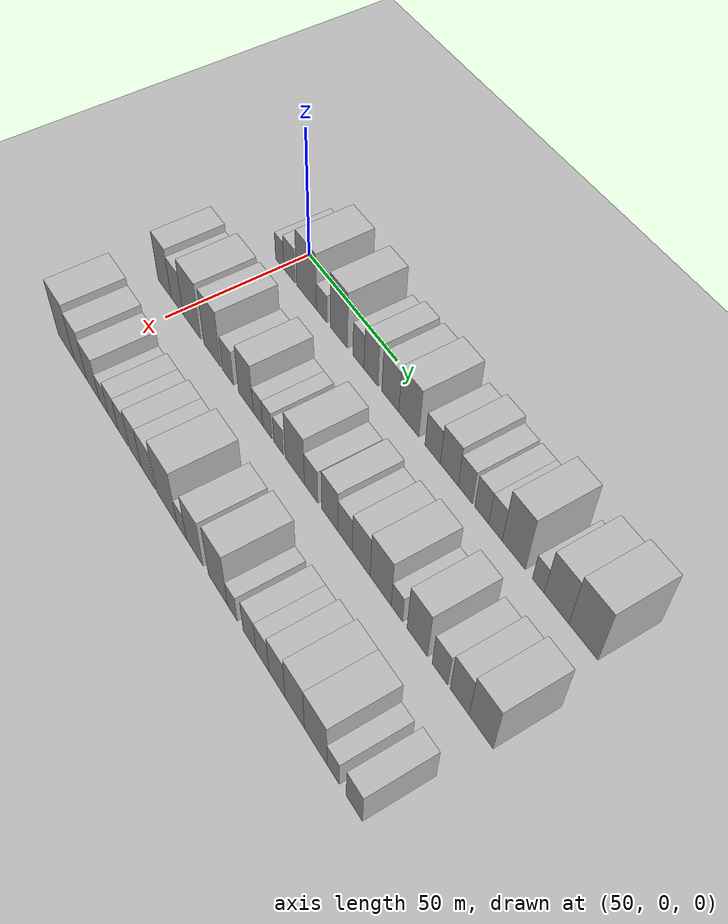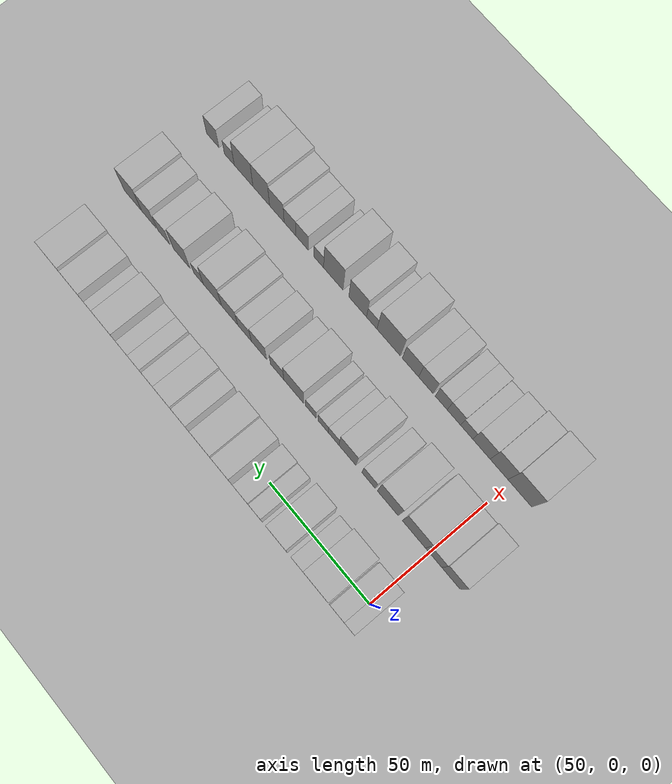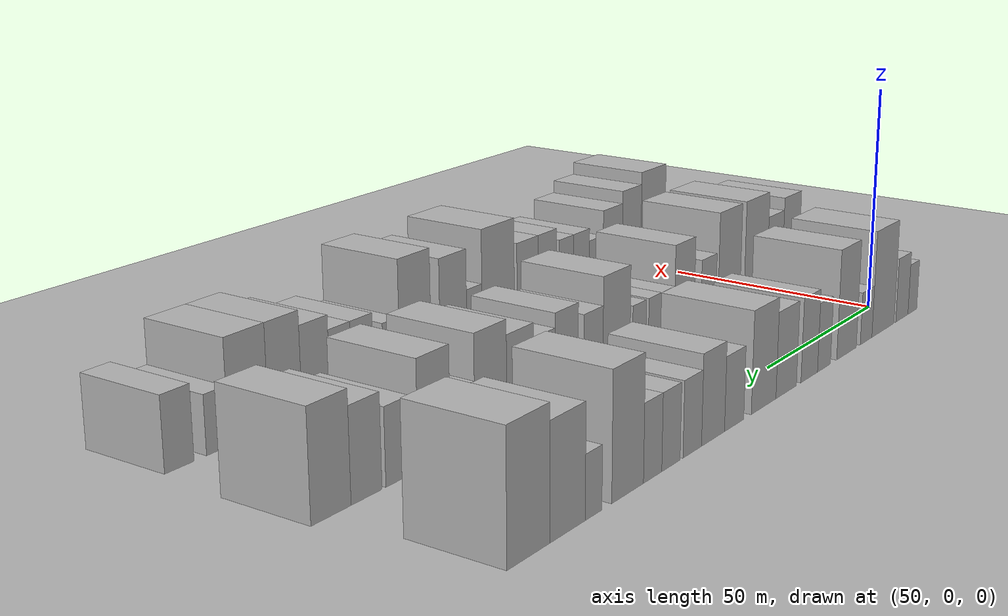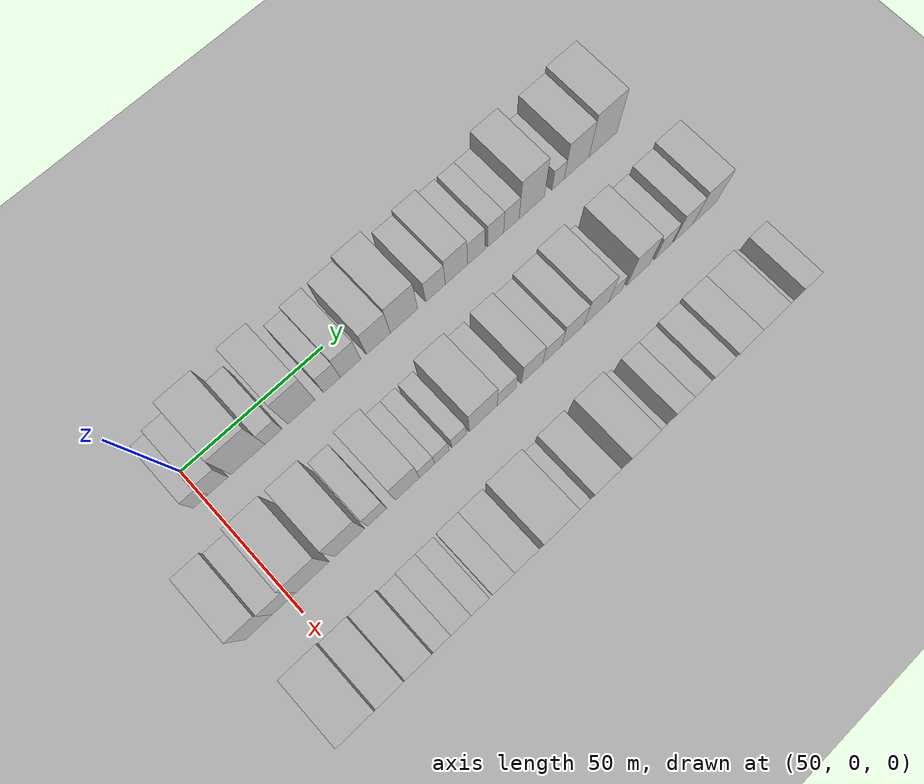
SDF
<sdf version="1.6">
 <world name="default">
  <include><name>ground_plane_1</name><uri>model://HANNAS_ground_plane</uri></include>
  <include>
   <name>ground_plane_2</name>
   <uri>model://HANNAS_ground_plane</uri>
   <pose>100 0 0  0 0 0</pose>
  </include>
  <model name="building_39">
   <static>1</static>
   <pose>50.0000 -0.9894 0 0.000000 0.000000 0.000000</pose>
   <link name="link">
    <pose>0 0 6.00 0 0 0</pose>
    <collision name="collision"><geometry><box><size>20.0000 5.0517 12.0000</size></box></geometry></collision>
    <visual name="visual">
     <cast_shadows>0</cast_shadows>
     <geometry><box><size>20.0000 5.0517 12.0000</size></box></geometry>
     <material>
      <script>
       <uri>model://HANNAS_wall/materials/scripts</uri>
       <uri>model://HANNAS_wall/materials/textures</uri>
       <name>vrc/HANNAS_wall</name>
      </script>
     </material>
    </visual>
   </link>
  </model>
  <model name="building_40">
   <static>1</static>
   <pose>50.0000 4.9429 0 0.000000 0.000000 0.000000</pose>
   <link name="link">
    <pose>0 0 7.50 0 0 0</pose>
    <collision name="collision"><geometry><box><size>20.0000 6.8130 15.0000</size></box></geometry></collision>
    <visual name="visual">
     <cast_shadows>0</cast_shadows>
     <geometry><box><size>20.0000 6.8130 15.0000</size></box></geometry>
     <material>
      <script>
       <uri>model://HANNAS_wall/materials/scripts</uri>
       <uri>model://HANNAS_wall/materials/textures</uri>
       <name>vrc/HANNAS_wall</name>
      </script>
     </material>
    </visual>
   </link>
  </model>
  <model name="building_41">
   <static>1</static>
   <pose>50.0000 15.2436 0 0.000000 0.000000 0.000000</pose>
   <link name="link">
    <pose>0 0 12.00 0 0 0</pose>
    <collision name="collision"><geometry><box><size>20.0000 11.7885 24.0000</size></box></geometry></collision>
    <visual name="visual">
     <cast_shadows>0</cast_shadows>
     <geometry><box><size>20.0000 11.7885 24.0000</size></box></geometry>
     <material>
      <script>
       <uri>model://HANNAS_wall/materials/scripts</uri>
       <uri>model://HANNAS_wall/materials/textures</uri>
       <name>vrc/HANNAS_wall</name>
      </script>
     </material>
    </visual>
   </link>
  </model>
  <model name="building_42">
   <static>1</static>
   <pose>50.0000 24.1355 0 0.000000 0.000000 0.000000</pose>
   <link name="link">
    <pose>0 0 6.00 0 0 0</pose>
    <collision name="collision"><geometry><box><size>20.0000 5.9953 12.0000</size></box></geometry></collision>
    <visual name="visual">
     <cast_shadows>0</cast_shadows>
     <geometry><box><size>20.0000 5.9953 12.0000</size></box></geometry>
     <material>
      <script>
       <uri>model://HANNAS_wall/materials/scripts</uri>
       <uri>model://HANNAS_wall/materials/textures</uri>
       <name>vrc/HANNAS_wall</name>
      </script>
     </material>
    </visual>
   </link>
  </model>
  <model name="building_43">
   <static>1</static>
   <pose>50.0000 33.9502 0 0.000000 0.000000 0.000000</pose>
   <link name="link">
    <pose>0 0 12.00 0 0 0</pose>
    <collision name="collision"><geometry><box><size>20.0000 9.6340 24.0000</size></box></geometry></collision>
    <visual name="visual">
     <cast_shadows>0</cast_shadows>
     <geometry><box><size>20.0000 9.6340 24.0000</size></box></geometry>
     <material>
      <script>
       <uri>model://HANNAS_wall/materials/scripts</uri>
       <uri>model://HANNAS_wall/materials/textures</uri>
       <name>vrc/HANNAS_wall</name>
      </script>
     </material>
    </visual>
   </link>
  </model>
  <model name="building_44">
   <static>1</static>
   <pose>50.0000 44.7892 0 0.000000 0.000000 0.000000</pose>
   <link name="link">
    <pose>0 0 7.50 0 0 0</pose>
    <collision name="collision"><geometry><box><size>20.0000 6.0442 15.0000</size></box></geometry></collision>
    <visual name="visual">
     <cast_shadows>0</cast_shadows>
     <geometry><box><size>20.0000 6.0442 15.0000</size></box></geometry>
     <material>
      <script>
       <uri>model://HANNAS_wall/materials/scripts</uri>
       <uri>model://HANNAS_wall/materials/textures</uri>
       <name>vrc/HANNAS_wall</name>
      </script>
     </material>
    </visual>
   </link>
  </model>
  <model name="building_45">
   <static>1</static>
   <pose>50.0000 51.5669 0 0.000000 0.000000 0.000000</pose>
   <link name="link">
    <pose>0 0 9.00 0 0 0</pose>
    <collision name="collision"><geometry><box><size>20.0000 7.5112 18.0000</size></box></geometry></collision>
    <visual name="visual">
     <cast_shadows>0</cast_shadows>
     <geometry><box><size>20.0000 7.5112 18.0000</size></box></geometry>
     <material>
      <script>
       <uri>model://HANNAS_wall/materials/scripts</uri>
       <uri>model://HANNAS_wall/materials/textures</uri>
       <name>vrc/HANNAS_wall</name>
      </script>
     </material>
    </visual>
   </link>
  </model>
  <model name="building_46">
   <static>1</static>
   <pose>50.0000 61.7413 0 0.000000 0.000000 0.000000</pose>
   <link name="link">
    <pose>0 0 9.00 0 0 0</pose>
    <collision name="collision"><geometry><box><size>20.0000 8.8376 18.0000</size></box></geometry></collision>
    <visual name="visual">
     <cast_shadows>0</cast_shadows>
     <geometry><box><size>20.0000 8.8376 18.0000</size></box></geometry>
     <material>
      <script>
       <uri>model://HANNAS_wall/materials/scripts</uri>
       <uri>model://HANNAS_wall/materials/textures</uri>
       <name>vrc/HANNAS_wall</name>
      </script>
     </material>
    </visual>
   </link>
  </model>
  <model name="building_47">
   <static>1</static>
   <pose>50.0000 71.2421 0 0.000000 0.000000 0.000000</pose>
   <link name="link">
    <pose>0 0 10.50 0 0 0</pose>
    <collision name="collision"><geometry><box><size>20.0000 10.1640 21.0000</size></box></geometry></collision>
    <visual name="visual">
     <cast_shadows>0</cast_shadows>
     <geometry><box><size>20.0000 10.1640 21.0000</size></box></geometry>
     <material>
      <script>
       <uri>model://HANNAS_wall/materials/scripts</uri>
       <uri>model://HANNAS_wall/materials/textures</uri>
       <name>vrc/HANNAS_wall</name>
      </script>
     </material>
    </visual>
   </link>
  </model>
  <model name="building_48">
   <static>1</static>
   <pose>50.0000 83.0473 0 0.000000 0.000000 0.000000</pose>
   <link name="link">
    <pose>0 0 7.50 0 0 0</pose>
    <collision name="collision"><geometry><box><size>20.0000 7.4463 15.0000</size></box></geometry></collision>
    <visual name="visual">
     <cast_shadows>0</cast_shadows>
     <geometry><box><size>20.0000 7.4463 15.0000</size></box></geometry>
     <material>
      <script>
       <uri>model://HANNAS_wall/materials/scripts</uri>
       <uri>model://HANNAS_wall/materials/textures</uri>
       <name>vrc/HANNAS_wall</name>
      </script>
     </material>
    </visual>
   </link>
  </model>
  <model name="building_49">
   <static>1</static>
   <pose>50.0000 91.0459 0 0.000000 0.000000 0.000000</pose>
   <link name="link">
    <pose>0 0 9.00 0 0 0</pose>
    <collision name="collision"><geometry><box><size>20.0000 8.5509 18.0000</size></box></geometry></collision>
    <visual name="visual">
     <cast_shadows>0</cast_shadows>
     <geometry><box><size>20.0000 8.5509 18.0000</size></box></geometry>
     <material>
      <script>
       <uri>model://HANNAS_wall/materials/scripts</uri>
       <uri>model://HANNAS_wall/materials/textures</uri>
       <name>vrc/HANNAS_wall</name>
      </script>
     </material>
    </visual>
   </link>
  </model>
  <model name="building_50">
   <static>1</static>
   <pose>50.0000 98.6411 0 0.000000 0.000000 0.000000</pose>
   <link name="link">
    <pose>0 0 7.50 0 0 0</pose>
    <collision name="collision"><geometry><box><size>20.0000 6.6396 15.0000</size></box></geometry></collision>
    <visual name="visual">
     <cast_shadows>0</cast_shadows>
     <geometry><box><size>20.0000 6.6396 15.0000</size></box></geometry>
     <material>
      <script>
       <uri>model://HANNAS_wall/materials/scripts</uri>
       <uri>model://HANNAS_wall/materials/textures</uri>
       <name>vrc/HANNAS_wall</name>
      </script>
     </material>
    </visual>
   </link>
  </model>
  <model name="building_51">
   <static>1</static>
   <pose>50.0000 106.1036 0 0.000000 0.000000 0.000000</pose>
   <link name="link">
    <pose>0 0 7.50 0 0 0</pose>
    <collision name="collision"><geometry><box><size>20.0000 6.2854 15.0000</size></box></geometry></collision>
    <visual name="visual">
     <cast_shadows>0</cast_shadows>
     <geometry><box><size>20.0000 6.2854 15.0000</size></box></geometry>
     <material>
      <script>
       <uri>model://HANNAS_wall/materials/scripts</uri>
       <uri>model://HANNAS_wall/materials/textures</uri>
       <name>vrc/HANNAS_wall</name>
      </script>
     </material>
    </visual>
   </link>
  </model>
  <model name="building_52">
   <static>1</static>
   <pose>50.0000 112.2855 0 0.000000 0.000000 0.000000</pose>
   <link name="link">
    <pose>0 0 7.50 0 0 0</pose>
    <collision name="collision"><geometry><box><size>20.0000 6.0785 15.0000</size></box></geometry></collision>
    <visual name="visual">
     <cast_shadows>0</cast_shadows>
     <geometry><box><size>20.0000 6.0785 15.0000</size></box></geometry>
     <material>
      <script>
       <uri>model://HANNAS_wall/materials/scripts</uri>
       <uri>model://HANNAS_wall/materials/textures</uri>
       <name>vrc/HANNAS_wall</name>
      </script>
     </material>
    </visual>
   </link>
  </model>
  <model name="building_53">
   <static>1</static>
   <pose>50.0000 120.3476 0 0.000000 0.000000 0.000000</pose>
   <link name="link">
    <pose>0 0 12.00 0 0 0</pose>
    <collision name="collision"><geometry><box><size>20.0000 10.0456 24.0000</size></box></geometry></collision>
    <visual name="visual">
     <cast_shadows>0</cast_shadows>
     <geometry><box><size>20.0000 10.0456 24.0000</size></box></geometry>
     <material>
      <script>
       <uri>model://HANNAS_wall/materials/scripts</uri>
       <uri>model://HANNAS_wall/materials/textures</uri>
       <name>vrc/HANNAS_wall</name>
      </script>
     </material>
    </visual>
   </link>
  </model>
  <model name="building_54">
   <static>1</static>
   <pose>50.0000 130.8486 0 0.000000 0.000000 0.000000</pose>
   <link name="link">
    <pose>0 0 6.00 0 0 0</pose>
    <collision name="collision"><geometry><box><size>20.0000 4.9565 12.0000</size></box></geometry></collision>
    <visual name="visual">
     <cast_shadows>0</cast_shadows>
     <geometry><box><size>20.0000 4.9565 12.0000</size></box></geometry>
     <material>
      <script>
       <uri>model://HANNAS_wall/materials/scripts</uri>
       <uri>model://HANNAS_wall/materials/textures</uri>
       <name>vrc/HANNAS_wall</name>
      </script>
     </material>
    </visual>
   </link>
  </model>
  <model name="building_55">
   <static>1</static>
   <pose>50.0000 138.3481 0 0.000000 0.000000 0.000000</pose>
   <link name="link">
    <pose>0 0 10.50 0 0 0</pose>
    <collision name="collision"><geometry><box><size>20.0000 10.0426 21.0000</size></box></geometry></collision>
    <visual name="visual">
     <cast_shadows>0</cast_shadows>
     <geometry><box><size>20.0000 10.0426 21.0000</size></box></geometry>
     <material>
      <script>
       <uri>model://HANNAS_wall/materials/scripts</uri>
       <uri>model://HANNAS_wall/materials/textures</uri>
       <name>vrc/HANNAS_wall</name>
      </script>
     </material>
    </visual>
   </link>
  </model>
  <model name="building_56">
   <static>1</static>
   <pose>50.0000 149.1426 0 0.000000 0.000000 0.000000</pose>
   <link name="link">
    <pose>0 0 12.00 0 0 0</pose>
    <collision name="collision"><geometry><box><size>20.0000 11.5463 24.0000</size></box></geometry></collision>
    <visual name="visual">
     <cast_shadows>0</cast_shadows>
     <geometry><box><size>20.0000 11.5463 24.0000</size></box></geometry>
     <material>
      <script>
       <uri>model://HANNAS_wall/materials/scripts</uri>
       <uri>model://HANNAS_wall/materials/textures</uri>
       <name>vrc/HANNAS_wall</name>
      </script>
     </material>
    </visual>
   </link>
  </model>
  <model name="building_116">
   <static>1</static>
   <pose>85.0000 -10.2515 0 0.000000 0.000000 0.000000</pose>
   <link name="link">
    <pose>0 0 10.50 0 0 0</pose>
    <collision name="collision"><geometry><box><size>20.0000 8.8266 21.0000</size></box></geometry></collision>
    <visual name="visual">
     <cast_shadows>0</cast_shadows>
     <geometry><box><size>20.0000 8.8266 21.0000</size></box></geometry>
     <material>
      <script>
       <uri>model://HANNAS_wall/materials/scripts</uri>
       <uri>model://HANNAS_wall/materials/textures</uri>
       <name>vrc/HANNAS_wall</name>
      </script>
     </material>
    </visual>
   </link>
  </model>
  <model name="building_117">
   <static>1</static>
   <pose>85.0000 -1.9053 0 0.000000 0.000000 0.000000</pose>
   <link name="link">
    <pose>0 0 9.00 0 0 0</pose>
    <collision name="collision"><geometry><box><size>20.0000 7.8659 18.0000</size></box></geometry></collision>
    <visual name="visual">
     <cast_shadows>0</cast_shadows>
     <geometry><box><size>20.0000 7.8659 18.0000</size></box></geometry>
     <material>
      <script>
       <uri>model://HANNAS_wall/materials/scripts</uri>
       <uri>model://HANNAS_wall/materials/textures</uri>
       <name>vrc/HANNAS_wall</name>
      </script>
     </material>
    </visual>
   </link>
  </model>
  <model name="building_118">
   <static>1</static>
   <pose>85.0000 7.6980 0 0.000000 0.000000 0.000000</pose>
   <link name="link">
    <pose>0 0 12.00 0 0 0</pose>
    <collision name="collision"><geometry><box><size>20.0000 11.3406 24.0000</size></box></geometry></collision>
    <visual name="visual">
     <cast_shadows>0</cast_shadows>
     <geometry><box><size>20.0000 11.3406 24.0000</size></box></geometry>
     <material>
      <script>
       <uri>model://HANNAS_wall/materials/scripts</uri>
       <uri>model://HANNAS_wall/materials/textures</uri>
       <name>vrc/HANNAS_wall</name>
      </script>
     </material>
    </visual>
   </link>
  </model>
  <model name="building_119">
   <static>1</static>
   <pose>85.0000 20.5540 0 0.000000 0.000000 0.000000</pose>
   <link name="link">
    <pose>0 0 12.00 0 0 0</pose>
    <collision name="collision"><geometry><box><size>20.0000 10.3714 24.0000</size></box></geometry></collision>
    <visual name="visual">
     <cast_shadows>0</cast_shadows>
     <geometry><box><size>20.0000 10.3714 24.0000</size></box></geometry>
     <material>
      <script>
       <uri>model://HANNAS_wall/materials/scripts</uri>
       <uri>model://HANNAS_wall/materials/textures</uri>
       <name>vrc/HANNAS_wall</name>
      </script>
     </material>
    </visual>
   </link>
  </model>
  <model name="building_120">
   <static>1</static>
   <pose>85.0000 30.1135 0 0.000000 0.000000 0.000000</pose>
   <link name="link">
    <pose>0 0 7.50 0 0 0</pose>
    <collision name="collision"><geometry><box><size>20.0000 6.7477 15.0000</size></box></geometry></collision>
    <visual name="visual">
     <cast_shadows>0</cast_shadows>
     <geometry><box><size>20.0000 6.7477 15.0000</size></box></geometry>
     <material>
      <script>
       <uri>model://HANNAS_wall/materials/scripts</uri>
       <uri>model://HANNAS_wall/materials/textures</uri>
       <name>vrc/HANNAS_wall</name>
      </script>
     </material>
    </visual>
   </link>
  </model>
  <model name="building_121">
   <static>1</static>
   <pose>85.0000 40.7785 0 0.000000 0.000000 0.000000</pose>
   <link name="link">
    <pose>0 0 10.50 0 0 0</pose>
    <collision name="collision"><geometry><box><size>20.0000 8.5823 21.0000</size></box></geometry></collision>
    <visual name="visual">
     <cast_shadows>0</cast_shadows>
     <geometry><box><size>20.0000 8.5823 21.0000</size></box></geometry>
     <material>
      <script>
       <uri>model://HANNAS_wall/materials/scripts</uri>
       <uri>model://HANNAS_wall/materials/textures</uri>
       <name>vrc/HANNAS_wall</name>
      </script>
     </material>
    </visual>
   </link>
  </model>
  <model name="building_122">
   <static>1</static>
   <pose>85.0000 47.8047 0 0.000000 0.000000 0.000000</pose>
   <link name="link">
    <pose>0 0 6.00 0 0 0</pose>
    <collision name="collision"><geometry><box><size>20.0000 5.4702 12.0000</size></box></geometry></collision>
    <visual name="visual">
     <cast_shadows>0</cast_shadows>
     <geometry><box><size>20.0000 5.4702 12.0000</size></box></geometry>
     <material>
      <script>
       <uri>model://HANNAS_wall/materials/scripts</uri>
       <uri>model://HANNAS_wall/materials/textures</uri>
       <name>vrc/HANNAS_wall</name>
      </script>
     </material>
    </visual>
   </link>
  </model>
  <model name="building_123">
   <static>1</static>
   <pose>85.0000 53.1433 0 0.000000 0.000000 0.000000</pose>
   <link name="link">
    <pose>0 0 6.00 0 0 0</pose>
    <collision name="collision"><geometry><box><size>20.0000 5.2071 12.0000</size></box></geometry></collision>
    <visual name="visual">
     <cast_shadows>0</cast_shadows>
     <geometry><box><size>20.0000 5.2071 12.0000</size></box></geometry>
     <material>
      <script>
       <uri>model://HANNAS_wall/materials/scripts</uri>
       <uri>model://HANNAS_wall/materials/textures</uri>
       <name>vrc/HANNAS_wall</name>
      </script>
     </material>
    </visual>
   </link>
  </model>
  <model name="building_124">
   <static>1</static>
   <pose>85.0000 59.4095 0 0.000000 0.000000 0.000000</pose>
   <link name="link">
    <pose>0 0 6.00 0 0 0</pose>
    <collision name="collision"><geometry><box><size>20.0000 5.3252 12.0000</size></box></geometry></collision>
    <visual name="visual">
     <cast_shadows>0</cast_shadows>
     <geometry><box><size>20.0000 5.3252 12.0000</size></box></geometry>
     <material>
      <script>
       <uri>model://HANNAS_wall/materials/scripts</uri>
       <uri>model://HANNAS_wall/materials/textures</uri>
       <name>vrc/HANNAS_wall</name>
      </script>
     </material>
    </visual>
   </link>
  </model>
  <model name="building_125">
   <static>1</static>
   <pose>85.0000 68.2128 0 0.000000 0.000000 0.000000</pose>
   <link name="link">
    <pose>0 0 10.50 0 0 0</pose>
    <collision name="collision"><geometry><box><size>20.0000 10.2814 21.0000</size></box></geometry></collision>
    <visual name="visual">
     <cast_shadows>0</cast_shadows>
     <geometry><box><size>20.0000 10.2814 21.0000</size></box></geometry>
     <material>
      <script>
       <uri>model://HANNAS_wall/materials/scripts</uri>
       <uri>model://HANNAS_wall/materials/textures</uri>
       <name>vrc/HANNAS_wall</name>
      </script>
     </material>
    </visual>
   </link>
  </model>
  <model name="building_126">
   <static>1</static>
   <pose>85.0000 76.8649 0 0.000000 0.000000 0.000000</pose>
   <link name="link">
    <pose>0 0 7.50 0 0 0</pose>
    <collision name="collision"><geometry><box><size>20.0000 7.0229 15.0000</size></box></geometry></collision>
    <visual name="visual">
     <cast_shadows>0</cast_shadows>
     <geometry><box><size>20.0000 7.0229 15.0000</size></box></geometry>
     <material>
      <script>
       <uri>model://HANNAS_wall/materials/scripts</uri>
       <uri>model://HANNAS_wall/materials/textures</uri>
       <name>vrc/HANNAS_wall</name>
      </script>
     </material>
    </visual>
   </link>
  </model>
  <model name="building_127">
   <static>1</static>
   <pose>85.0000 86.4111 0 0.000000 0.000000 0.000000</pose>
   <link name="link">
    <pose>0 0 9.00 0 0 0</pose>
    <collision name="collision"><geometry><box><size>20.0000 8.0696 18.0000</size></box></geometry></collision>
    <visual name="visual">
     <cast_shadows>0</cast_shadows>
     <geometry><box><size>20.0000 8.0696 18.0000</size></box></geometry>
     <material>
      <script>
       <uri>model://HANNAS_wall/materials/scripts</uri>
       <uri>model://HANNAS_wall/materials/textures</uri>
       <name>vrc/HANNAS_wall</name>
      </script>
     </material>
    </visual>
   </link>
  </model>
  <model name="building_128">
   <static>1</static>
   <pose>85.0000 94.0438 0 0.000000 0.000000 0.000000</pose>
   <link name="link">
    <pose>0 0 7.50 0 0 0</pose>
    <collision name="collision"><geometry><box><size>20.0000 7.1958 15.0000</size></box></geometry></collision>
    <visual name="visual">
     <cast_shadows>0</cast_shadows>
     <geometry><box><size>20.0000 7.1958 15.0000</size></box></geometry>
     <material>
      <script>
       <uri>model://HANNAS_wall/materials/scripts</uri>
       <uri>model://HANNAS_wall/materials/textures</uri>
       <name>vrc/HANNAS_wall</name>
      </script>
     </material>
    </visual>
   </link>
  </model>
  <model name="building_129">
   <static>1</static>
   <pose>85.0000 101.9792 0 0.000000 0.000000 0.000000</pose>
   <link name="link">
    <pose>0 0 9.00 0 0 0</pose>
    <collision name="collision"><geometry><box><size>20.0000 8.6748 18.0000</size></box></geometry></collision>
    <visual name="visual">
     <cast_shadows>0</cast_shadows>
     <geometry><box><size>20.0000 8.6748 18.0000</size></box></geometry>
     <material>
      <script>
       <uri>model://HANNAS_wall/materials/scripts</uri>
       <uri>model://HANNAS_wall/materials/textures</uri>
       <name>vrc/HANNAS_wall</name>
      </script>
     </material>
    </visual>
   </link>
  </model>
  <model name="building_130">
   <static>1</static>
   <pose>85.0000 111.2460 0 0.000000 0.000000 0.000000</pose>
   <link name="link">
    <pose>0 0 10.50 0 0 0</pose>
    <collision name="collision"><geometry><box><size>20.0000 9.8589 21.0000</size></box></geometry></collision>
    <visual name="visual">
     <cast_shadows>0</cast_shadows>
     <geometry><box><size>20.0000 9.8589 21.0000</size></box></geometry>
     <material>
      <script>
       <uri>model://HANNAS_wall/materials/scripts</uri>
       <uri>model://HANNAS_wall/materials/textures</uri>
       <name>vrc/HANNAS_wall</name>
      </script>
     </material>
    </visual>
   </link>
  </model>
  <model name="building_131">
   <static>1</static>
   <pose>85.0000 118.7785 0 0.000000 0.000000 0.000000</pose>
   <link name="link">
    <pose>0 0 6.00 0 0 0</pose>
    <collision name="collision"><geometry><box><size>20.0000 5.2061 12.0000</size></box></geometry></collision>
    <visual name="visual">
     <cast_shadows>0</cast_shadows>
     <geometry><box><size>20.0000 5.2061 12.0000</size></box></geometry>
     <material>
      <script>
       <uri>model://HANNAS_wall/materials/scripts</uri>
       <uri>model://HANNAS_wall/materials/textures</uri>
       <name>vrc/HANNAS_wall</name>
      </script>
     </material>
    </visual>
   </link>
  </model>
  <model name="building_132">
   <static>1</static>
   <pose>85.0000 127.9424 0 0.000000 0.000000 0.000000</pose>
   <link name="link">
    <pose>0 0 10.50 0 0 0</pose>
    <collision name="collision"><geometry><box><size>20.0000 9.1217 21.0000</size></box></geometry></collision>
    <visual name="visual">
     <cast_shadows>0</cast_shadows>
     <geometry><box><size>20.0000 9.1217 21.0000</size></box></geometry>
     <material>
      <script>
       <uri>model://HANNAS_wall/materials/scripts</uri>
       <uri>model://HANNAS_wall/materials/textures</uri>
       <name>vrc/HANNAS_wall</name>
      </script>
     </material>
    </visual>
   </link>
  </model>
  <model name="building_133">
   <static>1</static>
   <pose>85.0000 137.8553 0 0.000000 0.000000 0.000000</pose>
   <link name="link">
    <pose>0 0 7.50 0 0 0</pose>
    <collision name="collision"><geometry><box><size>20.0000 6.7041 15.0000</size></box></geometry></collision>
    <visual name="visual">
     <cast_shadows>0</cast_shadows>
     <geometry><box><size>20.0000 6.7041 15.0000</size></box></geometry>
     <material>
      <script>
       <uri>model://HANNAS_wall/materials/scripts</uri>
       <uri>model://HANNAS_wall/materials/textures</uri>
       <name>vrc/HANNAS_wall</name>
      </script>
     </material>
    </visual>
   </link>
  </model>
  <model name="building_134">
   <static>1</static>
   <pose>85.0000 146.1530 0 0.000000 0.000000 0.000000</pose>
   <link name="link">
    <pose>0 0 9.00 0 0 0</pose>
    <collision name="collision"><geometry><box><size>20.0000 7.8914 18.0000</size></box></geometry></collision>
    <visual name="visual">
     <cast_shadows>0</cast_shadows>
     <geometry><box><size>20.0000 7.8914 18.0000</size></box></geometry>
     <material>
      <script>
       <uri>model://HANNAS_wall/materials/scripts</uri>
       <uri>model://HANNAS_wall/materials/textures</uri>
       <name>vrc/HANNAS_wall</name>
      </script>
     </material>
    </visual>
   </link>
  </model>
  <model name="building_135">
   <static>1</static>
   <pose>85.0000 154.9851 0 0.000000 0.000000 0.000000</pose>
   <link name="link">
    <pose>0 0 10.50 0 0 0</pose>
    <collision name="collision"><geometry><box><size>20.0000 9.7727 21.0000</size></box></geometry></collision>
    <visual name="visual">
     <cast_shadows>0</cast_shadows>
     <geometry><box><size>20.0000 9.7727 21.0000</size></box></geometry>
     <material>
      <script>
       <uri>model://HANNAS_wall/materials/scripts</uri>
       <uri>model://HANNAS_wall/materials/textures</uri>
       <name>vrc/HANNAS_wall</name>
      </script>
     </material>
    </visual>
   </link>
  </model>
  <model name="building_197">
   <static>1</static>
   <pose>120.0000 -4.4008 0 0.000000 0.000000 0.000000</pose>
   <link name="link">
    <pose>0 0 12.00 0 0 0</pose>
    <collision name="collision"><geometry><box><size>20.0000 11.5165 24.0000</size></box></geometry></collision>
    <visual name="visual">
     <cast_shadows>0</cast_shadows>
     <geometry><box><size>20.0000 11.5165 24.0000</size></box></geometry>
     <material>
      <script>
       <uri>model://HANNAS_wall/materials/scripts</uri>
       <uri>model://HANNAS_wall/materials/textures</uri>
       <name>vrc/HANNAS_wall</name>
      </script>
     </material>
    </visual>
   </link>
  </model>
  <model name="building_198">
   <static>1</static>
   <pose>120.0000 5.7030 0 0.000000 0.000000 0.000000</pose>
   <link name="link">
    <pose>0 0 10.50 0 0 0</pose>
    <collision name="collision"><geometry><box><size>20.0000 8.6910 21.0000</size></box></geometry></collision>
    <visual name="visual">
     <cast_shadows>0</cast_shadows>
     <geometry><box><size>20.0000 8.6910 21.0000</size></box></geometry>
     <material>
      <script>
       <uri>model://HANNAS_wall/materials/scripts</uri>
       <uri>model://HANNAS_wall/materials/textures</uri>
       <name>vrc/HANNAS_wall</name>
      </script>
     </material>
    </visual>
   </link>
  </model>
  <model name="building_199">
   <static>1</static>
   <pose>120.0000 14.3172 0 0.000000 0.000000 0.000000</pose>
   <link name="link">
    <pose>0 0 9.00 0 0 0</pose>
    <collision name="collision"><geometry><box><size>20.0000 8.5374 18.0000</size></box></geometry></collision>
    <visual name="visual">
     <cast_shadows>0</cast_shadows>
     <geometry><box><size>20.0000 8.5374 18.0000</size></box></geometry>
     <material>
      <script>
       <uri>model://HANNAS_wall/materials/scripts</uri>
       <uri>model://HANNAS_wall/materials/textures</uri>
       <name>vrc/HANNAS_wall</name>
      </script>
     </material>
    </visual>
   </link>
  </model>
  <model name="building_200">
   <static>1</static>
   <pose>120.0000 21.5673 0 0.000000 0.000000 0.000000</pose>
   <link name="link">
    <pose>0 0 6.00 0 0 0</pose>
    <collision name="collision"><geometry><box><size>20.0000 5.9628 12.0000</size></box></geometry></collision>
    <visual name="visual">
     <cast_shadows>0</cast_shadows>
     <geometry><box><size>20.0000 5.9628 12.0000</size></box></geometry>
     <material>
      <script>
       <uri>model://HANNAS_wall/materials/scripts</uri>
       <uri>model://HANNAS_wall/materials/textures</uri>
       <name>vrc/HANNAS_wall</name>
      </script>
     </material>
    </visual>
   </link>
  </model>
  <model name="building_201">
   <static>1</static>
   <pose>120.0000 27.8762 0 0.000000 0.000000 0.000000</pose>
   <link name="link">
    <pose>0 0 7.50 0 0 0</pose>
    <collision name="collision"><geometry><box><size>20.0000 6.6550 15.0000</size></box></geometry></collision>
    <visual name="visual">
     <cast_shadows>0</cast_shadows>
     <geometry><box><size>20.0000 6.6550 15.0000</size></box></geometry>
     <material>
      <script>
       <uri>model://HANNAS_wall/materials/scripts</uri>
       <uri>model://HANNAS_wall/materials/textures</uri>
       <name>vrc/HANNAS_wall</name>
      </script>
     </material>
    </visual>
   </link>
  </model>
  <model name="building_202">
   <static>1</static>
   <pose>120.0000 34.2150 0 0.000000 0.000000 0.000000</pose>
   <link name="link">
    <pose>0 0 7.50 0 0 0</pose>
    <collision name="collision"><geometry><box><size>20.0000 6.0225 15.0000</size></box></geometry></collision>
    <visual name="visual">
     <cast_shadows>0</cast_shadows>
     <geometry><box><size>20.0000 6.0225 15.0000</size></box></geometry>
     <material>
      <script>
       <uri>model://HANNAS_wall/materials/scripts</uri>
       <uri>model://HANNAS_wall/materials/textures</uri>
       <name>vrc/HANNAS_wall</name>
      </script>
     </material>
    </visual>
   </link>
  </model>
  <model name="building_203">
   <static>1</static>
   <pose>120.0000 41.9098 0 0.000000 0.000000 0.000000</pose>
   <link name="link">
    <pose>0 0 9.00 0 0 0</pose>
    <collision name="collision"><geometry><box><size>20.0000 7.3671 18.0000</size></box></geometry></collision>
    <visual name="visual">
     <cast_shadows>0</cast_shadows>
     <geometry><box><size>20.0000 7.3671 18.0000</size></box></geometry>
     <material>
      <script>
       <uri>model://HANNAS_wall/materials/scripts</uri>
       <uri>model://HANNAS_wall/materials/textures</uri>
       <name>vrc/HANNAS_wall</name>
      </script>
     </material>
    </visual>
   </link>
  </model>
  <model name="building_204">
   <static>1</static>
   <pose>120.0000 49.7267 0 0.000000 0.000000 0.000000</pose>
   <link name="link">
    <pose>0 0 9.00 0 0 0</pose>
    <collision name="collision"><geometry><box><size>20.0000 8.2668 18.0000</size></box></geometry></collision>
    <visual name="visual">
     <cast_shadows>0</cast_shadows>
     <geometry><box><size>20.0000 8.2668 18.0000</size></box></geometry>
     <material>
      <script>
       <uri>model://HANNAS_wall/materials/scripts</uri>
       <uri>model://HANNAS_wall/materials/textures</uri>
       <name>vrc/HANNAS_wall</name>
      </script>
     </material>
    </visual>
   </link>
  </model>
  <model name="building_205">
   <static>1</static>
   <pose>120.0000 60.8256 0 0.000000 0.000000 0.000000</pose>
   <link name="link">
    <pose>0 0 12.00 0 0 0</pose>
    <collision name="collision"><geometry><box><size>20.0000 11.9309 24.0000</size></box></geometry></collision>
    <visual name="visual">
     <cast_shadows>0</cast_shadows>
     <geometry><box><size>20.0000 11.9309 24.0000</size></box></geometry>
     <material>
      <script>
       <uri>model://HANNAS_wall/materials/scripts</uri>
       <uri>model://HANNAS_wall/materials/textures</uri>
       <name>vrc/HANNAS_wall</name>
      </script>
     </material>
    </visual>
   </link>
  </model>
  <model name="building_206">
   <static>1</static>
   <pose>120.0000 69.5146 0 0.000000 0.000000 0.000000</pose>
   <link name="link">
    <pose>0 0 6.00 0 0 0</pose>
    <collision name="collision"><geometry><box><size>20.0000 5.4472 12.0000</size></box></geometry></collision>
    <visual name="visual">
     <cast_shadows>0</cast_shadows>
     <geometry><box><size>20.0000 5.4472 12.0000</size></box></geometry>
     <material>
      <script>
       <uri>model://HANNAS_wall/materials/scripts</uri>
       <uri>model://HANNAS_wall/materials/textures</uri>
       <name>vrc/HANNAS_wall</name>
      </script>
     </material>
    </visual>
   </link>
  </model>
  <model name="building_207">
   <static>1</static>
   <pose>120.0000 76.8476 0 0.000000 0.000000 0.000000</pose>
   <link name="link">
    <pose>0 0 10.50 0 0 0</pose>
    <collision name="collision"><geometry><box><size>20.0000 9.2189 21.0000</size></box></geometry></collision>
    <visual name="visual">
     <cast_shadows>0</cast_shadows>
     <geometry><box><size>20.0000 9.2189 21.0000</size></box></geometry>
     <material>
      <script>
       <uri>model://HANNAS_wall/materials/scripts</uri>
       <uri>model://HANNAS_wall/materials/textures</uri>
       <name>vrc/HANNAS_wall</name>
      </script>
     </material>
    </visual>
   </link>
  </model>
  <model name="building_208">
   <static>1</static>
   <pose>120.0000 89.5604 0 0.000000 0.000000 0.000000</pose>
   <link name="link">
    <pose>0 0 12.00 0 0 0</pose>
    <collision name="collision"><geometry><box><size>20.0000 10.2067 24.0000</size></box></geometry></collision>
    <visual name="visual">
     <cast_shadows>0</cast_shadows>
     <geometry><box><size>20.0000 10.2067 24.0000</size></box></geometry>
     <material>
      <script>
       <uri>model://HANNAS_wall/materials/scripts</uri>
       <uri>model://HANNAS_wall/materials/textures</uri>
       <name>vrc/HANNAS_wall</name>
      </script>
     </material>
    </visual>
   </link>
  </model>
  <model name="building_209">
   <static>1</static>
   <pose>120.0000 97.2356 0 0.000000 0.000000 0.000000</pose>
   <link name="link">
    <pose>0 0 6.00 0 0 0</pose>
    <collision name="collision"><geometry><box><size>20.0000 5.1438 12.0000</size></box></geometry></collision>
    <visual name="visual">
     <cast_shadows>0</cast_shadows>
     <geometry><box><size>20.0000 5.1438 12.0000</size></box></geometry>
     <material>
      <script>
       <uri>model://HANNAS_wall/materials/scripts</uri>
       <uri>model://HANNAS_wall/materials/textures</uri>
       <name>vrc/HANNAS_wall</name>
      </script>
     </material>
    </visual>
   </link>
  </model>
  <model name="building_210">
   <static>1</static>
   <pose>120.0000 106.0946 0 0.000000 0.000000 0.000000</pose>
   <link name="link">
    <pose>0 0 7.50 0 0 0</pose>
    <collision name="collision"><geometry><box><size>20.0000 6.5740 15.0000</size></box></geometry></collision>
    <visual name="visual">
     <cast_shadows>0</cast_shadows>
     <geometry><box><size>20.0000 6.5740 15.0000</size></box></geometry>
     <material>
      <script>
       <uri>model://HANNAS_wall/materials/scripts</uri>
       <uri>model://HANNAS_wall/materials/textures</uri>
       <name>vrc/HANNAS_wall</name>
      </script>
     </material>
    </visual>
   </link>
  </model>
  <model name="building_211">
   <static>1</static>
   <pose>120.0000 112.5561 0 0.000000 0.000000 0.000000</pose>
   <link name="link">
    <pose>0 0 7.50 0 0 0</pose>
    <collision name="collision"><geometry><box><size>20.0000 6.3491 15.0000</size></box></geometry></collision>
    <visual name="visual">
     <cast_shadows>0</cast_shadows>
     <geometry><box><size>20.0000 6.3491 15.0000</size></box></geometry>
     <material>
      <script>
       <uri>model://HANNAS_wall/materials/scripts</uri>
       <uri>model://HANNAS_wall/materials/textures</uri>
       <name>vrc/HANNAS_wall</name>
      </script>
     </material>
    </visual>
   </link>
  </model>
  <model name="building_212">
   <static>1</static>
   <pose>120.0000 119.6691 0 0.000000 0.000000 0.000000</pose>
   <link name="link">
    <pose>0 0 9.00 0 0 0</pose>
    <collision name="collision"><geometry><box><size>20.0000 7.8768 18.0000</size></box></geometry></collision>
    <visual name="visual">
     <cast_shadows>0</cast_shadows>
     <geometry><box><size>20.0000 7.8768 18.0000</size></box></geometry>
     <material>
      <script>
       <uri>model://HANNAS_wall/materials/scripts</uri>
       <uri>model://HANNAS_wall/materials/textures</uri>
       <name>vrc/HANNAS_wall</name>
      </script>
     </material>
    </visual>
   </link>
  </model>
  <model name="building_213">
   <static>1</static>
   <pose>120.0000 128.1193 0 0.000000 0.000000 0.000000</pose>
   <link name="link">
    <pose>0 0 10.50 0 0 0</pose>
    <collision name="collision"><geometry><box><size>20.0000 9.0237 21.0000</size></box></geometry></collision>
    <visual name="visual">
     <cast_shadows>0</cast_shadows>
     <geometry><box><size>20.0000 9.0237 21.0000</size></box></geometry>
     <material>
      <script>
       <uri>model://HANNAS_wall/materials/scripts</uri>
       <uri>model://HANNAS_wall/materials/textures</uri>
       <name>vrc/HANNAS_wall</name>
      </script>
     </material>
    </visual>
   </link>
  </model>
  <model name="building_214">
   <static>1</static>
   <pose>120.0000 137.7825 0 0.000000 0.000000 0.000000</pose>
   <link name="link">
    <pose>0 0 10.50 0 0 0</pose>
    <collision name="collision"><geometry><box><size>20.0000 10.3026 21.0000</size></box></geometry></collision>
    <visual name="visual">
     <cast_shadows>0</cast_shadows>
     <geometry><box><size>20.0000 10.3026 21.0000</size></box></geometry>
     <material>
      <script>
       <uri>model://HANNAS_wall/materials/scripts</uri>
       <uri>model://HANNAS_wall/materials/textures</uri>
       <name>vrc/HANNAS_wall</name>
      </script>
     </material>
    </visual>
   </link>
  </model>
  <model name="building_215">
   <static>1</static>
   <pose>120.0000 145.6630 0 0.000000 0.000000 0.000000</pose>
   <link name="link">
    <pose>0 0 6.00 0 0 0</pose>
    <collision name="collision"><geometry><box><size>20.0000 5.4585 12.0000</size></box></geometry></collision>
    <visual name="visual">
     <cast_shadows>0</cast_shadows>
     <geometry><box><size>20.0000 5.4585 12.0000</size></box></geometry>
     <material>
      <script>
       <uri>model://HANNAS_wall/materials/scripts</uri>
       <uri>model://HANNAS_wall/materials/textures</uri>
       <name>vrc/HANNAS_wall</name>
      </script>
     </material>
    </visual>
   </link>
  </model>
  <model name="building_216">
   <static>1</static>
   <pose>120.0000 154.8561 0 0.000000 0.000000 0.000000</pose>
   <link name="link">
    <pose>0 0 7.50 0 0 0</pose>
    <collision name="collision"><geometry><box><size>20.0000 6.9278 15.0000</size></box></geometry></collision>
    <visual name="visual">
     <cast_shadows>0</cast_shadows>
     <geometry><box><size>20.0000 6.9278 15.0000</size></box></geometry>
     <material>
      <script>
       <uri>model://HANNAS_wall/materials/scripts</uri>
       <uri>model://HANNAS_wall/materials/textures</uri>
       <name>vrc/HANNAS_wall</name>
      </script>
     </material>
    </visual>
   </link>
  </model>
 </world>
</sdf>
